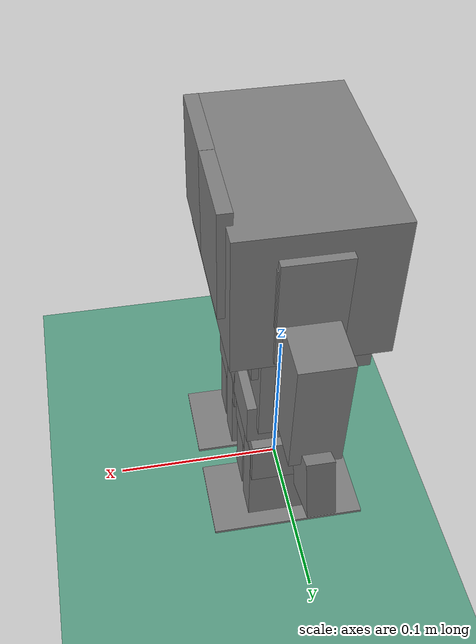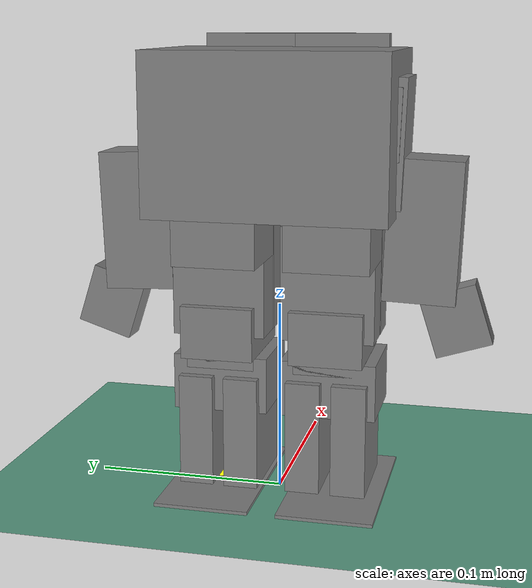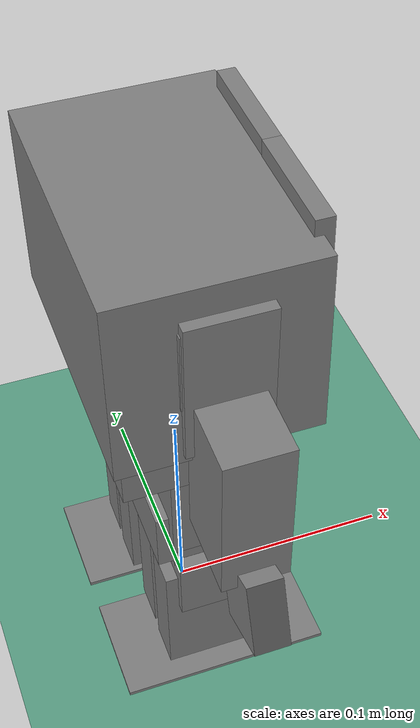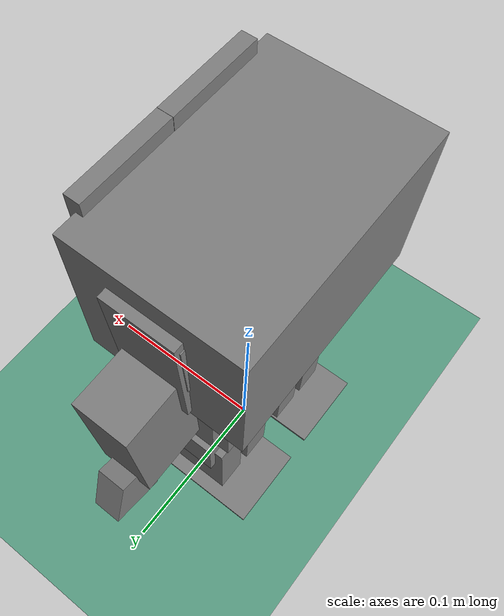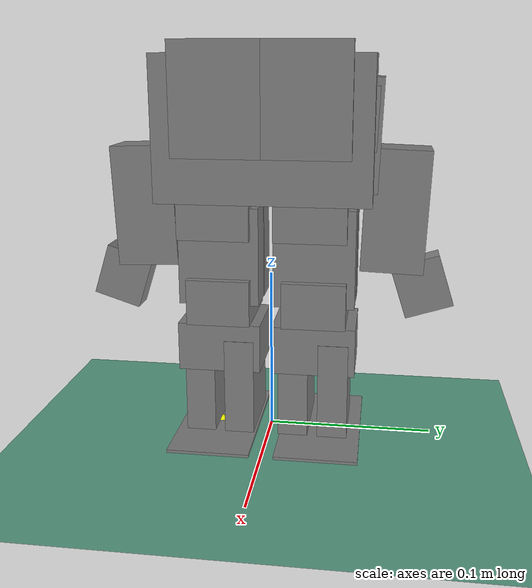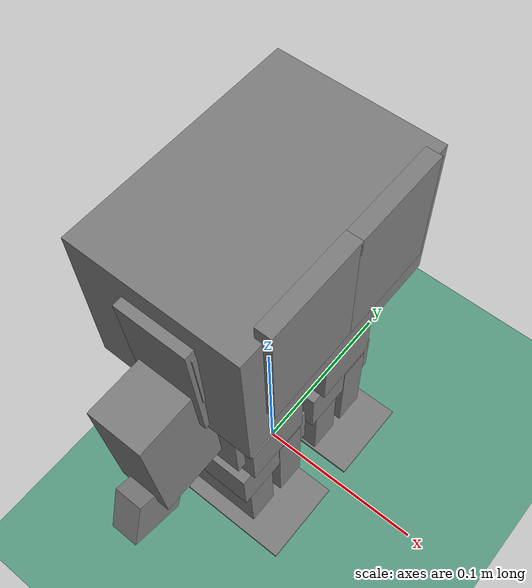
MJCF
<?xml version='1.0' encoding='utf-8'?>
<mujoco model="marty2_full">
  <!--Generated from public/physics/marty2_kinematics.json, public/physics/marty2_inertials.json, public/physics/marty2_collisions.json, and public/physics/marty2_servo_supplier_envelopes.json.-->
  <compiler angle="radian" autolimits="true" />
  <option timestep="0.002" gravity="0 0 -9.81" integrator="implicitfast" />
  <default>
    <position ctrllimited="true" />
  </default>
  <worldbody>
    <geom name="floor" type="plane" size="20 20 0.05" contype="0" conaffinity="1" rgba="0.35 0.62 0.52 1" />
    <body name="base_link" pos="0 0 0.15338">
      <freejoint name="base_link_free" />
      <body name="head" pos="0 0 0" euler="0 0 0">
        <inertial pos="0.02 0 0.035" mass="0.1867" diaginertia="0.00052587167 0.00048697583 0.00048697583" />
        <geom name="collision_head_0" type="box" pos="-1.86041e-05 0 0.036750719" size="0.041587796 0.060924497 0.040750719" contype="1" conaffinity="0" />
        <body name="side_panel_left" pos="0.0025 0.05744 0.04221" euler="-0.0361 0 0">
          <inertial pos="0 0 0" mass="0.0217" diaginertia="1.8083333e-05 1.1980208e-05 6.916875e-06" />
          <geom name="collision_side_panel_left_0" type="box" pos="0 -0.0056750004 -0.0095458124" size="0.017385276 0.013075 0.032269659" contype="1" conaffinity="0" />
          <body name="arm_servo_gear_left" pos="0 0.00025 0" euler="0 0 0">
            <joint name="arm_servo_gear_left_joint" type="hinge" pos="0 0 0" axis="0 1 0" range="-0.95 2.05" limited="true" />
            <inertial pos="0 0 0" mass="0.004" diaginertia="2.56333e-07 4.16667e-07 2.56333e-07" />
            <geom name="collision_arm_servo_gear_left_0" type="box" pos="8.126744e-06 0.00025000004 -1.341217e-06" size="0.017990294 0.0047499998 0.017980758" contype="1" conaffinity="0" />
          </body>
          <body name="arm_left" pos="0 0 -0.0302" euler="0 0 0">
            <joint name="arm_left_joint" type="hinge" pos="0 0 0" axis="0 1 0" range="-2.68 1.24" limited="true" />
            <inertial pos="0 0 -0.03" mass="0.005" diaginertia="1.927083e-06 1.854167e-06 2.60417e-07" />
            <geom name="collision_arm_left_0" type="box" pos="0 0.018363036 -0.021873386" size="0.013979778 0.018363036 0.035869441" contype="1" conaffinity="0" />
            <body name="hand_left" pos="0 0.033 -0.05539" euler="0.34906585 0 0">
              <inertial pos="0 0 0" mass="0.003" diaginertia="4.36e-07 3.4225e-07 7.0625e-07" />
              <geom name="collision_hand_left_0" type="box" pos="0 0 -0.012090381" size="0.0074999998 0.01461352 0.015890381" contype="1" conaffinity="0" />
            </body>
          </body>
        </body>
        <body name="side_panel_right" pos="0.0025 -0.05744 0.04221" euler="0.0361 0 0">
          <inertial pos="0 0 0" mass="0.0217" diaginertia="1.8083333e-05 1.1980208e-05 6.916875e-06" />
          <geom name="collision_side_panel_right_0" type="box" pos="-7.1628e-08 0.0056750096 -0.0095458124" size="0.017385276 0.013075028 0.032269659" contype="1" conaffinity="0" />
          <body name="arm_servo_gear_right" pos="0 -0.00025 0" euler="0 0 0">
            <joint name="arm_servo_gear_right_joint" type="hinge" pos="0 0 0" axis="0 1 0" range="-0.95 2.05" limited="true" />
            <inertial pos="0 0 0" mass="0.004" diaginertia="2.56333e-07 4.16667e-07 2.56333e-07" />
            <geom name="collision_arm_servo_gear_right_0" type="box" pos="-1.61779e-06 -0.00024996179 3.896666e-06" size="0.017997509 0.004749989 0.017991975" contype="1" conaffinity="0" />
          </body>
          <body name="arm_right" pos="0 0 -0.0302" euler="0 0 0">
            <joint name="arm_right_joint" type="hinge" pos="0 0 0" axis="0 1 0" range="-2.68 1.24" limited="true" />
            <inertial pos="0 0 -0.03" mass="0.005" diaginertia="1.927083e-06 1.854167e-06 2.60417e-07" />
            <geom name="collision_arm_right_0" type="box" pos="1.8366e-08 -0.018363016 -0.021873386" size="0.013979791 0.018363096 0.035869441" contype="1" conaffinity="0" />
            <body name="hand_right" pos="0 -0.033 -0.05539" euler="-0.34906585 0 0">
              <inertial pos="0 0 0" mass="0.003" diaginertia="4.36e-07 3.4225e-07 7.0625e-07" />
              <geom name="collision_hand_right_0" type="box" pos="0 0 -0.012090381" size="0.0074999998 0.01461352 0.015890381" contype="1" conaffinity="0" />
            </body>
          </body>
        </body>
        <body name="eye_left" pos="0.0457 0.0241 0.04671" euler="0 0 0">
          <joint name="eye_left_joint" type="hinge" pos="0 0 0" axis="1 0 0" range="-3 0.25" limited="true" />
          <inertial pos="0 0 0" mass="0.006" diaginertia="6.845e-07 6.845e-07 1.225e-06" />
          <geom name="collision_eye_left_0" type="box" pos="-0.0038000001 0.0002748305 0.0064520435" size="0.0038000001 0.025070745 0.031247958" contype="1" conaffinity="0" />
        </body>
        <body name="eye_right" pos="0.0457 -0.0241 0.04671" euler="0 0 0">
          <joint name="eye_right_joint" type="hinge" pos="0 0 0" axis="1 0 0" range="-0.25 3" limited="true" />
          <inertial pos="0 0 0" mass="0.006" diaginertia="6.845e-07 6.845e-07 1.225e-06" />
          <geom name="collision_eye_right_0" type="box" pos="-0.0038749999 -0.00021576168 0.006488715" size="0.0038749999 0.025014937 0.03128789" contype="1" conaffinity="0" />
        </body>
        <body name="hip_left" pos="0.01087 0.04709 -0.01465" euler="0 0 0">
          <inertial pos="0 0 0" mass="0.0275" diaginertia="7.333333e-06 6.473958e-06 6.473958e-06" />
          <geom name="collision_hip_left_0" type="box" pos="-0.015576159 -0.02135 0.0058202459" size="0.032226159 0.02135 0.019079755" contype="1" conaffinity="0" />
          <body name="leg_left_thigh_front" pos="0 0.00025 0" euler="0 0 0">
            <joint name="leg_left_thigh_joint" type="hinge" pos="0 0 0" axis="0 1 0" range="-1 1" limited="true" />
            <inertial pos="0 0 -0.025" mass="0.005" diaginertia="1.320417e-06 1.395417e-06 1.95e-07" />
            <geom name="collision_leg_left_thigh_front_0" type="box" pos="0.00245 -0.019217856 -0.023559131" size="0.010275 0.023917858 0.029265579" contype="1" conaffinity="0" />
            <body name="leg_left_knee_upper" pos="0 -0.00015 -0.05" euler="0 0 0">
              <joint name="leg_left_knee_upper_joint" type="hinge" pos="0 0 0" axis="0 1 0" range="-1 1" limited="true" />
              <inertial pos="0 0 0" mass="0.004" diaginertia="2.66667e-07 3.41667e-07 3.41667e-07" />
              <geom name="collision_leg_left_knee_upper_0" type="box" pos="-0.0081000002 -0.018850001 -0.00064650411" size="0.02625 0.018850001 0.013703496" contype="1" conaffinity="0" />
              <body name="leg_left_twist_upper" pos="-0.0081 -0.01885 -0.00968" euler="0 0 0">
                <inertial pos="0 0 0" mass="0.003" diaginertia="2.5625e-07 2.5625e-07 3.125e-07" />
                <geom name="collision_leg_left_twist_upper_0" type="box" pos="0.002952992 0 -0.00012496766" size="0.018674015 0.018845174 0.0091226641" contype="1" conaffinity="0" />
                <body name="leg_left_twist_lower" pos="0 0 0" euler="0 0 0">
                  <joint name="leg_left_twist_joint" type="hinge" pos="0 0 0" axis="0 0 1" range="-1 1" limited="true" />
                  <inertial pos="0 0 0" mass="0.0155" diaginertia="1.969792e-06 1.969792e-06 2.325e-06" />
                  <geom name="collision_leg_left_twist_lower_0" type="box" pos="0 1.1176e-08 -0.0057518394" size="0.018850001 0.017736681 0.0057518394" contype="1" conaffinity="0" />
                  <body name="leg_left_knee_lower" pos="-0.01885 0.0081 -0.02075" euler="0 0 0">
                    <inertial pos="0 0 0" mass="0.0185" diaginertia="1.927083e-06 2.351042e-06 2.351042e-06" />
                    <geom name="collision_leg_left_knee_lower_0" type="box" pos="0.02135 -0.0081000002 0.0013693529" size="0.02135 0.024750001 0.014628483" contype="1" conaffinity="0" />
                    <body name="leg_left_shin_exterior" pos="0 0 0" euler="0 0 0">
                      <joint name="leg_left_shin_joint" type="hinge" pos="0 0 0" axis="1 0 0" range="-1.5707963 1.5707963" limited="true" />
                      <inertial pos="0 0 -0.025" mass="0.005" diaginertia="1.320417e-06 1.395417e-06 1.95e-07" />
                      <geom name="collision_leg_left_shin_exterior_0" type="box" pos="0.019067857 0.0038163827 -0.023558971" size="0.023917858 0.0089086175 0.029265418" contype="1" conaffinity="0" />
                      <body name="foot_left" pos="0 0 -0.05" euler="0 0 0">
                        <joint name="foot_left_joint" type="hinge" pos="0 0 0" axis="1 0 0" range="-1.5707963 1.5707963" limited="true" />
                        <inertial pos="0.018955281 -0.004681587 -0.0051223392" mass="0.016" diaginertia="4.562732e-06 1.1860113e-05 1.6244514e-05" />
                        <geom name="collision_foot_left_0" type="box" pos="0.018950024 -0.0043500001 -0.0074" size="0.045973591 0.024723588 0.00089999987" contype="3" conaffinity="2" />
                        <site name="left_foot_site" pos="0.018950024 -0.0043500001 -0.0082999999" size="0.004" rgba="1 1 0 1" />
                        <site name="left_foot_contact_site" type="box" pos="0.018950024 -0.0043500001 -0.0074" size="0.045973591 0.024723588 0.00089999987" rgba="1 0.65 0 0.35" />
                      </body>
                    </body>
                    <body name="leg_left_shin_interior" pos="0.0377 -0.0162 0" euler="0 0 0">
                      <joint name="leg_left_shin_interior_joint" type="hinge" pos="0 0 0" axis="1 0 0" range="-1.5707963 1.5707963" limited="true" />
                      <inertial pos="0 0 -0.025" mass="0.005" diaginertia="1.320417e-06 1.395417e-06 1.95e-07" />
                      <geom name="collision_leg_left_shin_interior_0" type="box" pos="-0.019067764 -0.003816691 -0.023558971" size="0.023917858 0.0089086251 0.029265418" contype="1" conaffinity="0" />
                    </body>
                  </body>
                </body>
              </body>
            </body>
          </body>
          <body name="leg_left_thigh_back" pos="-0.0162 -0.03795 0" euler="0 0 0">
            <joint name="leg_left_thigh_back_joint" type="hinge" pos="0 0 0" axis="0 1 0" range="-1 1" limited="true" />
            <inertial pos="0 0 -0.025" mass="0.005" diaginertia="1.320417e-06 1.395417e-06 1.95e-07" />
            <geom name="collision_leg_left_thigh_back_0" type="box" pos="-0.0024501498 0.019217763 -0.023559131" size="0.010275167 0.023917857 0.029265579" contype="1" conaffinity="0" />
          </body>
        </body>
        <body name="hip_right" pos="0.01087 -0.00941 -0.01465" euler="0 0 0">
          <inertial pos="0 0 0" mass="0.0275" diaginertia="7.333333e-06 6.473958e-06 6.473958e-06" />
          <geom name="collision_hip_right_0" type="box" pos="-0.015576159 -0.02135 0.0058202459" size="0.032226159 0.02135 0.019079755" contype="1" conaffinity="0" />
          <body name="leg_right_thigh_front" pos="0 0.00025 0" euler="0 0 0">
            <joint name="leg_right_thigh_joint" type="hinge" pos="0 0 0" axis="0 1 0" range="-1 1" limited="true" />
            <inertial pos="0 0 -0.025" mass="0.005" diaginertia="1.320417e-06 1.395417e-06 1.95e-07" />
            <geom name="collision_leg_right_thigh_front_0" type="box" pos="0.00245 -0.019217856 -0.023559131" size="0.010275 0.023917858 0.029265579" contype="1" conaffinity="0" />
            <body name="leg_right_knee_upper" pos="0 -0.00015 -0.05" euler="0 0 0">
              <joint name="leg_right_knee_upper_joint" type="hinge" pos="0 0 0" axis="0 1 0" range="-1 1" limited="true" />
              <inertial pos="0 0 0" mass="0.004" diaginertia="2.66667e-07 3.41667e-07 3.41667e-07" />
              <geom name="collision_leg_right_knee_upper_0" type="box" pos="-0.0081000002 -0.018850001 -0.00064650411" size="0.02625 0.018850001 0.013703496" contype="1" conaffinity="0" />
              <body name="leg_right_twist_upper" pos="-0.0081 -0.01885 -0.00968" euler="0 0 0">
                <inertial pos="0 0 0" mass="0.003" diaginertia="2.5625e-07 2.5625e-07 3.125e-07" />
                <geom name="collision_leg_right_twist_upper_0" type="box" pos="0.002952992 0 -0.00012496766" size="0.018674015 0.018845174 0.0091226641" contype="1" conaffinity="0" />
                <body name="leg_right_twist_lower" pos="0 0 0" euler="0 0 0">
                  <joint name="leg_right_twist_joint" type="hinge" pos="0 0 0" axis="0 0 1" range="-1 1" limited="true" />
                  <inertial pos="0 0 0" mass="0.0155" diaginertia="1.969792e-06 1.969792e-06 2.325e-06" />
                  <geom name="collision_leg_right_twist_lower_0" type="box" pos="0 1.1176e-08 -0.0057518394" size="0.018850001 0.017736681 0.0057518394" contype="1" conaffinity="0" />
                  <body name="leg_right_knee_lower" pos="-0.01885 0.0081 -0.02075" euler="0 0 0">
                    <inertial pos="0 0 0" mass="0.0185" diaginertia="1.927083e-06 2.351042e-06 2.351042e-06" />
                    <geom name="collision_leg_right_knee_lower_0" type="box" pos="0.02135 -0.0081000002 0.0013693529" size="0.02135 0.024750001 0.014628483" contype="1" conaffinity="0" />
                    <body name="leg_right_shin_exterior" pos="0.0377 -0.0162 0" euler="0 0 0">
                      <joint name="leg_right_shin_exterior_joint" type="hinge" pos="0 0 0" axis="1 0 0" range="-1.5707963 1.5707963" limited="true" />
                      <inertial pos="0 0 -0.025" mass="0.005" diaginertia="1.320417e-06 1.395417e-06 1.95e-07" />
                      <geom name="collision_leg_right_shin_exterior_0" type="box" pos="-0.019067764 -0.003816691 -0.023558971" size="0.023917858 0.0089086251 0.029265418" contype="1" conaffinity="0" />
                    </body>
                    <body name="leg_right_shin_interior" pos="0 0 0" euler="0 0 0">
                      <joint name="leg_right_shin_joint" type="hinge" pos="0 0 0" axis="1 0 0" range="-1.5707963 1.5707963" limited="true" />
                      <inertial pos="0 0 -0.025" mass="0.005" diaginertia="1.320417e-06 1.395417e-06 1.95e-07" />
                      <geom name="collision_leg_right_shin_interior_0" type="box" pos="0.019067857 0.0038163827 -0.023558971" size="0.023917858 0.0089086175 0.029265418" contype="1" conaffinity="0" />
                      <body name="foot_right" pos="0 0 -0.05" euler="0 0 0">
                        <joint name="foot_right_joint" type="hinge" pos="0 0 0" axis="1 0 0" range="-1.5707963 1.5707963" limited="true" />
                        <inertial pos="0.018944685 -0.011518552 -0.0051223392" mass="0.016" diaginertia="4.562732e-06 1.1860113e-05 1.6244514e-05" />
                        <geom name="collision_foot_right_0" type="box" pos="0.018949944 -0.011850139 -0.0074" size="0.04597371 0.024723864 0.00089999987" contype="3" conaffinity="2" />
                        <site name="right_foot_site" pos="0.018949944 -0.011850139 -0.0082999999" size="0.004" rgba="1 1 0 1" />
                        <site name="right_foot_contact_site" type="box" pos="0.018949944 -0.011850139 -0.0074" size="0.04597371 0.024723864 0.00089999987" rgba="1 0.65 0 0.35" />
                      </body>
                    </body>
                  </body>
                </body>
              </body>
            </body>
          </body>
          <body name="leg_right_thigh_back" pos="-0.0162 -0.03795 0" euler="0 0 0">
            <joint name="leg_right_thigh_back_joint" type="hinge" pos="0 0 0" axis="0 1 0" range="-1 1" limited="true" />
            <inertial pos="0 0 -0.025" mass="0.005" diaginertia="1.320417e-06 1.395417e-06 1.95e-07" />
            <geom name="collision_leg_right_thigh_back_0" type="box" pos="-0.0024501498 0.019217763 -0.023559131" size="0.010275167 0.023917857 0.029265579" contype="1" conaffinity="0" />
          </body>
        </body>
      </body>
    </body>
  </worldbody>
  <equality>
    <joint name="mimic_eye_right_joint" joint1="eye_right_joint" joint2="eye_left_joint" polycoef="0 -1 0 0 0" solref="0.004 1" solimp="0.95 0.99 0.0001 0.5 2" />
    <joint name="mimic_arm_left_joint" joint1="arm_left_joint" joint2="arm_servo_gear_left_joint" polycoef="0 -1.3076923 0 0 0" solref="0.004 1" solimp="0.95 0.99 0.0001 0.5 2" />
    <joint name="mimic_arm_right_joint" joint1="arm_right_joint" joint2="arm_servo_gear_right_joint" polycoef="0 -1.3076923 0 0 0" solref="0.004 1" solimp="0.95 0.99 0.0001 0.5 2" />
    <joint name="mimic_leg_left_thigh_back_joint" joint1="leg_left_thigh_back_joint" joint2="leg_left_thigh_joint" polycoef="0 1 0 0 0" solref="0.004 1" solimp="0.95 0.99 0.0001 0.5 2" />
    <joint name="mimic_leg_left_knee_upper_joint" joint1="leg_left_knee_upper_joint" joint2="leg_left_thigh_joint" polycoef="0 -1 0 0 0" solref="0.004 1" solimp="0.95 0.99 0.0001 0.5 2" />
    <joint name="mimic_leg_left_shin_interior_joint" joint1="leg_left_shin_interior_joint" joint2="leg_left_shin_joint" polycoef="0 1 0 0 0" solref="0.004 1" solimp="0.95 0.99 0.0001 0.5 2" />
    <joint name="mimic_foot_left_joint" joint1="foot_left_joint" joint2="leg_left_shin_joint" polycoef="0 -1 0 0 0" solref="0.004 1" solimp="0.95 0.99 0.0001 0.5 2" />
    <joint name="mimic_leg_right_thigh_back_joint" joint1="leg_right_thigh_back_joint" joint2="leg_right_thigh_joint" polycoef="0 1 0 0 0" solref="0.004 1" solimp="0.95 0.99 0.0001 0.5 2" />
    <joint name="mimic_leg_right_knee_upper_joint" joint1="leg_right_knee_upper_joint" joint2="leg_right_thigh_joint" polycoef="0 -1 0 0 0" solref="0.004 1" solimp="0.95 0.99 0.0001 0.5 2" />
    <joint name="mimic_leg_right_shin_exterior_joint" joint1="leg_right_shin_exterior_joint" joint2="leg_right_shin_joint" polycoef="0 1 0 0 0" solref="0.004 1" solimp="0.95 0.99 0.0001 0.5 2" />
    <joint name="mimic_foot_right_joint" joint1="foot_right_joint" joint2="leg_right_shin_joint" polycoef="0 -1 0 0 0" solref="0.004 1" solimp="0.95 0.99 0.0001 0.5 2" />
  </equality>
  <actuator>
    <position name="eye_left_act" joint="eye_left_joint" ctrlrange="-3 0.25" forcelimited="true" forcerange="-0.0588399 0.0588399" />
    <position name="arm_servo_gear_left_act" joint="arm_servo_gear_left_joint" ctrlrange="-0.95 2.05" forcelimited="true" forcerange="-0.0588399 0.0588399" />
    <position name="arm_servo_gear_right_act" joint="arm_servo_gear_right_joint" ctrlrange="-0.95 2.05" forcelimited="true" forcerange="-0.0588399 0.0588399" />
    <position name="leg_left_thigh_act" joint="leg_left_thigh_joint" ctrlrange="-1 1" forcelimited="true" forcerange="-0.08825985 0.08825985" />
    <position name="leg_right_thigh_act" joint="leg_right_thigh_joint" ctrlrange="-1 1" forcelimited="true" forcerange="-0.08825985 0.08825985" />
    <position name="leg_left_twist_act" joint="leg_left_twist_joint" ctrlrange="-1 1" forcelimited="true" forcerange="-0.0588399 0.0588399" />
    <position name="leg_right_twist_act" joint="leg_right_twist_joint" ctrlrange="-1 1" forcelimited="true" forcerange="-0.0588399 0.0588399" />
    <position name="leg_left_shin_act" joint="leg_left_shin_joint" ctrlrange="-1.5707963 1.5707963" forcelimited="true" forcerange="-0.08825985 0.08825985" />
    <position name="leg_right_shin_act" joint="leg_right_shin_joint" ctrlrange="-1.5707963 1.5707963" forcelimited="true" forcerange="-0.08825985 0.08825985" />
  </actuator>
  <keyframe>
    <key name="neutral" qpos="0 0 0.15338 1 0 0 0 0 0 0 0 0 0 0 0 0 0 0 0 0 0 0 0 0 0 0 0" ctrl="0 0 0 0 0 0 0 0 0" />
    <key name="stand_straight" qpos="0 0 0.15338 1 0 0 0 0 0 0 0 0 0 0 0 0 0 0 0 0 0 0 0 0 0 0 0" ctrl="0 0 0 0 0 0 0 0 0" />
    <key name="get_ready" qpos="0 0 0.15338 1 0 0 0 0 0 0 0 0 0 0 0 0 0 0 0 0 0 0 0 0 0 0 0" ctrl="0 0 0 0 0 0 0 0 0" />
    <key name="get_ready_eyes_out" qpos="0 0 0.15338 1 0 0 0 -0.52359878 0.52359878 0 0 0 0 0 0 0 0 0 0 0 0 0 0 0 0 0 0" ctrl="-0.52359878 0 0 0 0 0 0 0 0" />
    <key name="get_ready_eyes_in" qpos="0 0 0.15338 1 0 0 0 0.26179939 -0.26179939 0 0 0 0 0 0 0 0 0 0 0 0 0 0 0 0 0 0" ctrl="0.26179939 0 0 0 0 0 0 0 0" />
  </keyframe>
  <sensor>
    <framepos name="base_link_position" objtype="xbody" objname="base_link" />
    <framequat name="base_link_orientation" objtype="xbody" objname="base_link" />
    <framepos name="left_foot_position" objtype="site" objname="left_foot_site" />
    <touch name="left_foot_contact_force" site="left_foot_contact_site" />
    <framepos name="right_foot_position" objtype="site" objname="right_foot_site" />
    <touch name="right_foot_contact_force" site="right_foot_contact_site" />
    <jointpos name="eye_left_pos" joint="eye_left_joint" />
    <jointvel name="eye_left_vel" joint="eye_left_joint" />
    <jointpos name="arm_servo_gear_left_pos" joint="arm_servo_gear_left_joint" />
    <jointvel name="arm_servo_gear_left_vel" joint="arm_servo_gear_left_joint" />
    <jointpos name="arm_servo_gear_right_pos" joint="arm_servo_gear_right_joint" />
    <jointvel name="arm_servo_gear_right_vel" joint="arm_servo_gear_right_joint" />
    <jointpos name="leg_left_thigh_pos" joint="leg_left_thigh_joint" />
    <jointvel name="leg_left_thigh_vel" joint="leg_left_thigh_joint" />
    <jointpos name="leg_right_thigh_pos" joint="leg_right_thigh_joint" />
    <jointvel name="leg_right_thigh_vel" joint="leg_right_thigh_joint" />
    <jointpos name="leg_left_twist_pos" joint="leg_left_twist_joint" />
    <jointvel name="leg_left_twist_vel" joint="leg_left_twist_joint" />
    <jointpos name="leg_right_twist_pos" joint="leg_right_twist_joint" />
    <jointvel name="leg_right_twist_vel" joint="leg_right_twist_joint" />
    <jointpos name="leg_left_shin_pos" joint="leg_left_shin_joint" />
    <jointvel name="leg_left_shin_vel" joint="leg_left_shin_joint" />
    <jointpos name="leg_right_shin_pos" joint="leg_right_shin_joint" />
    <jointvel name="leg_right_shin_vel" joint="leg_right_shin_joint" />
  </sensor>
</mujoco>
